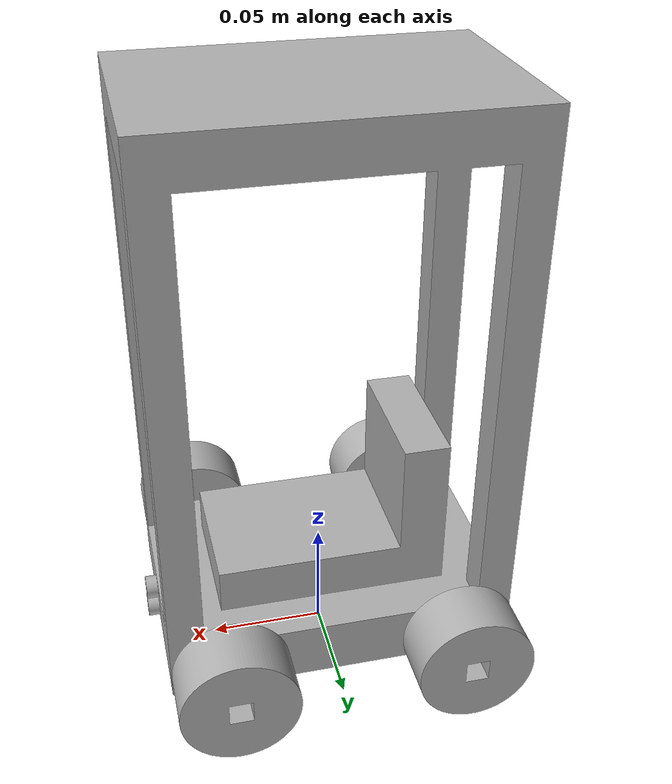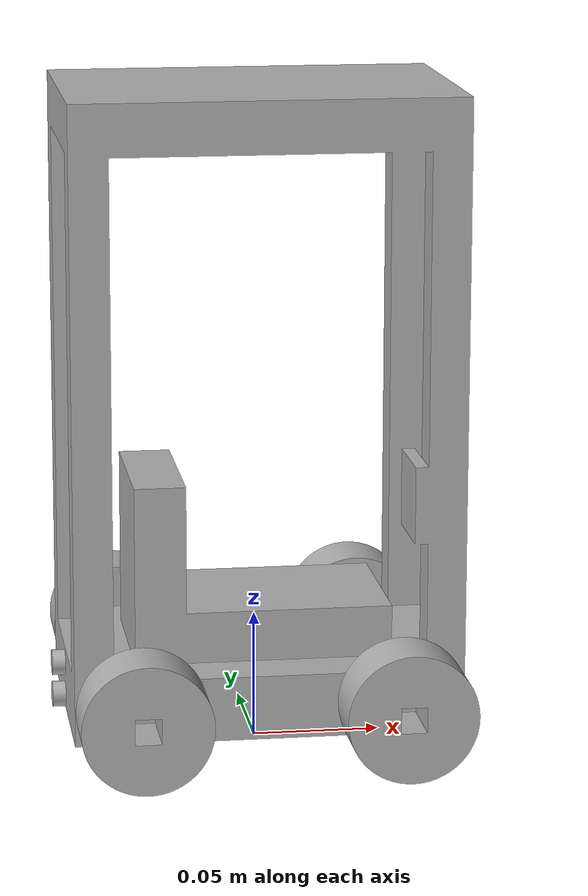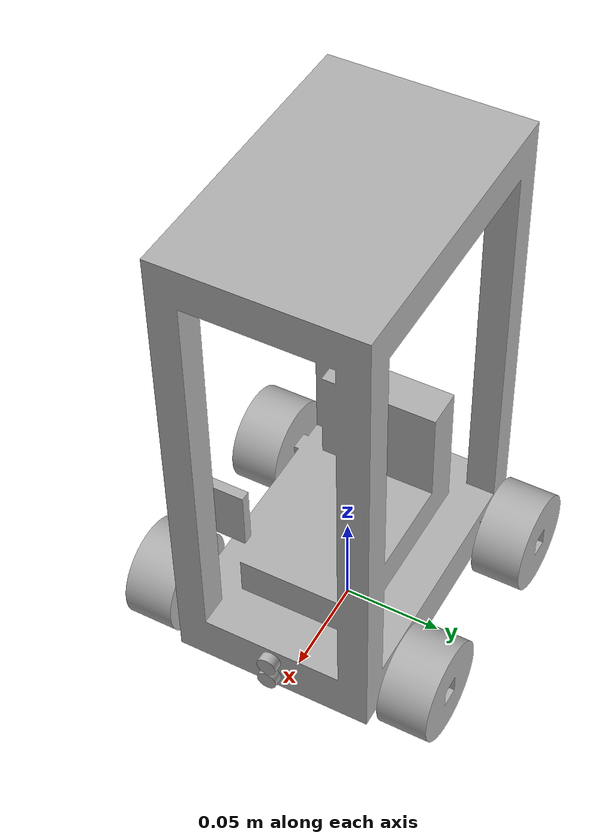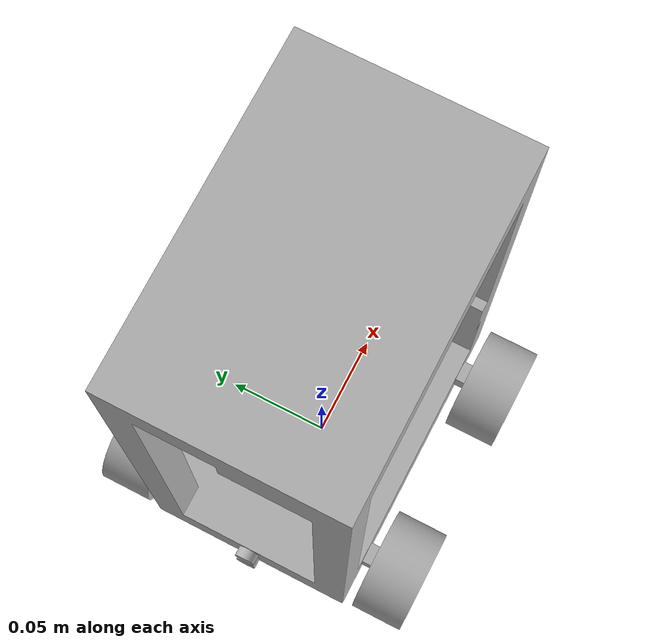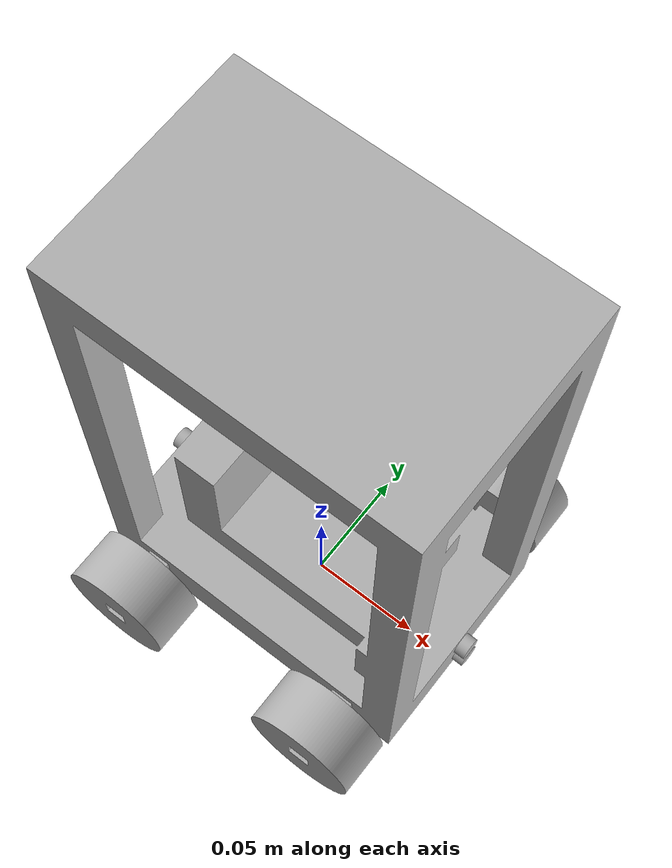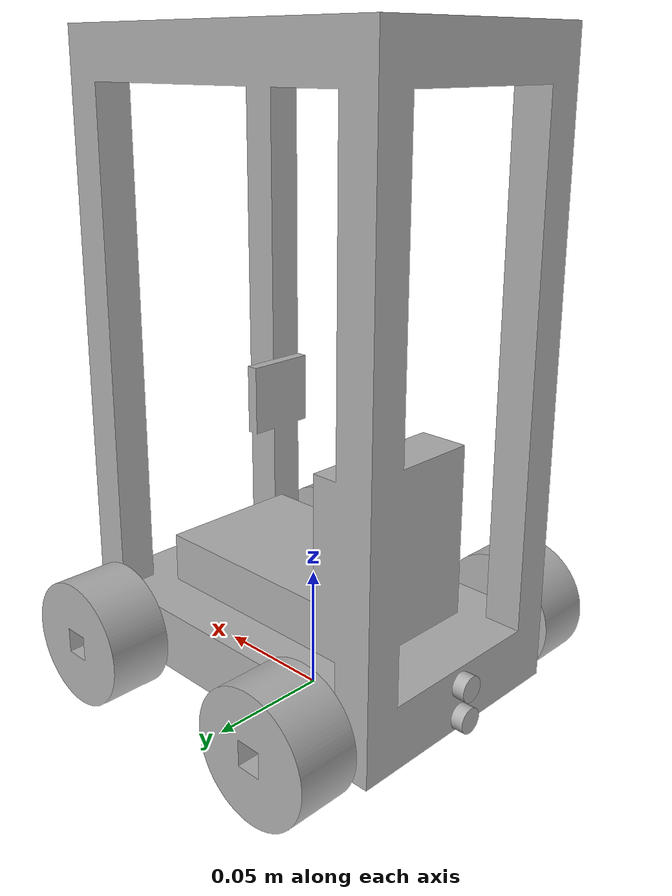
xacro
<?xml version="1.0" ?>
<robot name="myrobot_final" xmlns:xacro="http://www.ros.org/wiki/xacro">

<xacro:include filename="$(find myrobot_final_description)/urdf/materials.xacro" />
<xacro:include filename="$(find myrobot_final_description)/urdf/myrobot_final.trans" />
<xacro:include filename="$(find myrobot_final_description)/urdf/myrobot_final.gazebo" />
<link name="base_link">
  <inertial>
    <origin xyz="-0.0020559289486317654 -0.00015122419587132208 0.11727796447431584" rpy="0 0 0"/>
    <mass value="0.1978849999999998"/>
    <inertia ixx="0.002019" iyy="0.002274" izz="0.000619" ixy="2e-06" iyz="-0.0" ixz="-1.4e-05"/>
  </inertial>
  <visual>
    <origin xyz="0 0 0" rpy="0 0 0"/>
    <geometry>
      <mesh filename="package://myrobot_final_description/meshes/base_link.stl" scale="0.001 0.001 0.001"/>
    </geometry>
    <material name="silver"/>
  </visual>
  <collision>
    <origin xyz="0 0 0" rpy="0 0 0"/>
    <geometry>
      <mesh filename="package://myrobot_final_description/meshes/base_link.stl" scale="0.001 0.001 0.001"/>
    </geometry>
  </collision>
</link>

<link name="right_wheel2_1">
  <inertial>
    <origin xyz="0.0 -0.012500000000000004 6.938893903907228e-18" rpy="0 0 0"/>
    <mass value="0.365710973916873"/>
    <inertia ixx="7.9e-05" iyy="0.00012" izz="7.9e-05" ixy="0.0" iyz="-0.0" ixz="-0.0"/>
  </inertial>
  <visual>
    <origin xyz="0.05 0.055 -0.03" rpy="0 0 0"/>
    <geometry>
      <mesh filename="package://myrobot_final_description/meshes/right_wheel2_1.stl" scale="0.001 0.001 0.001"/>
    </geometry>
    <material name="silver"/>
  </visual>
  <collision>
    <origin xyz="0.05 0.055 -0.03" rpy="0 0 0"/>
    <geometry>
      <mesh filename="package://myrobot_final_description/meshes/right_wheel2_1.stl" scale="0.001 0.001 0.001"/>
    </geometry>
  </collision>
</link>

<link name="left_wheel2_1">
  <inertial>
    <origin xyz="1.3877787807814457e-17 0.01249999999999999 6.938893903907228e-18" rpy="0 0 0"/>
    <mass value="0.365710973916873"/>
    <inertia ixx="7.9e-05" iyy="0.00012" izz="7.9e-05" ixy="0.0" iyz="0.0" ixz="0.0"/>
  </inertial>
  <visual>
    <origin xyz="0.05 -0.055 -0.03" rpy="0 0 0"/>
    <geometry>
      <mesh filename="package://myrobot_final_description/meshes/left_wheel2_1.stl" scale="0.001 0.001 0.001"/>
    </geometry>
    <material name="silver"/>
  </visual>
  <collision>
    <origin xyz="0.05 -0.055 -0.03" rpy="0 0 0"/>
    <geometry>
      <mesh filename="package://myrobot_final_description/meshes/left_wheel2_1.stl" scale="0.001 0.001 0.001"/>
    </geometry>
  </collision>
</link>

<link name="right_wheel1_1">
  <inertial>
    <origin xyz="-1.3877787807814457e-17 -0.012500000000000004 6.938893903907228e-18" rpy="0 0 0"/>
    <mass value="0.365710973916873"/>
    <inertia ixx="7.9e-05" iyy="0.00012" izz="7.9e-05" ixy="0.0" iyz="-0.0" ixz="0.0"/>
  </inertial>
  <visual>
    <origin xyz="-0.05 0.055 -0.03" rpy="0 0 0"/>
    <geometry>
      <mesh filename="package://myrobot_final_description/meshes/right_wheel1_1.stl" scale="0.001 0.001 0.001"/>
    </geometry>
    <material name="silver"/>
  </visual>
  <collision>
    <origin xyz="-0.05 0.055 -0.03" rpy="0 0 0"/>
    <geometry>
      <mesh filename="package://myrobot_final_description/meshes/right_wheel1_1.stl" scale="0.001 0.001 0.001"/>
    </geometry>
  </collision>
</link>

<link name="left_wheel1_1">
  <inertial>
    <origin xyz="-1.3877787807814457e-17 0.01249999999999999 6.938893903907228e-18" rpy="0 0 0"/>
    <mass value="0.365710973916873"/>
    <inertia ixx="7.9e-05" iyy="0.00012" izz="7.9e-05" ixy="-0.0" iyz="0.0" ixz="0.0"/>
  </inertial>
  <visual>
    <origin xyz="-0.05 -0.055 -0.03" rpy="0 0 0"/>
    <geometry>
      <mesh filename="package://myrobot_final_description/meshes/left_wheel1_1.stl" scale="0.001 0.001 0.001"/>
    </geometry>
    <material name="silver"/>
  </visual>
  <collision>
    <origin xyz="-0.05 -0.055 -0.03" rpy="0 0 0"/>
    <geometry>
      <mesh filename="package://myrobot_final_description/meshes/left_wheel1_1.stl" scale="0.001 0.001 0.001"/>
    </geometry>
  </collision>
</link>

<link name="front_camera_1">
  <inertial>
    <origin xyz="0.0024999999999999883 2.0706853116018477e-05 -0.006999969373058072" rpy="0 0 0"/>
    <mass value="0.0008560839981032555"/>
    <inertia ixx="0.0" iyy="0.0" izz="0.0" ixy="0.0" iyz="-0.0" ixz="0.0"/>
  </inertial>
  <visual>
    <origin xyz="-0.075 -0.0 -0.04" rpy="0 0 0"/>
    <geometry>
      <mesh filename="package://myrobot_final_description/meshes/front_camera_1.stl" scale="0.001 0.001 0.001"/>
    </geometry>
    <material name="silver"/>
  </visual>
  <collision>
    <origin xyz="-0.075 -0.0 -0.04" rpy="0 0 0"/>
    <geometry>
      <mesh filename="package://myrobot_final_description/meshes/front_camera_1.stl" scale="0.001 0.001 0.001"/>
    </geometry>
  </collision>
</link>

<link name="front_lidar_1">
  <inertial>
    <origin xyz="0.0024999999999999883 5.228393686569684e-13 0.0075" rpy="0 0 0"/>
    <mass value="0.0008560839981032555"/>
    <inertia ixx="0.0" iyy="0.0" izz="0.0" ixy="0.0" iyz="0.0" ixz="-0.0"/>
  </inertial>
  <visual>
    <origin xyz="-0.075 -0.0 -0.015" rpy="0 0 0"/>
    <geometry>
      <mesh filename="package://myrobot_final_description/meshes/front_lidar_1.stl" scale="0.001 0.001 0.001"/>
    </geometry>
    <material name="silver"/>
  </visual>
  <collision>
    <origin xyz="-0.075 -0.0 -0.015" rpy="0 0 0"/>
    <geometry>
      <mesh filename="package://myrobot_final_description/meshes/front_lidar_1.stl" scale="0.001 0.001 0.001"/>
    </geometry>
  </collision>
</link>

<link name="bakc_camera_1">
  <inertial>
    <origin xyz="-0.0024999999999999883 -5.228386618670395e-13 -0.006999999999999999" rpy="0 0 0"/>
    <mass value="0.000856083998103255"/>
    <inertia ixx="0.0" iyy="0.0" izz="0.0" ixy="-0.0" iyz="0.0" ixz="0.0"/>
  </inertial>
  <visual>
    <origin xyz="0.075 -0.0 -0.04" rpy="0 0 0"/>
    <geometry>
      <mesh filename="package://myrobot_final_description/meshes/bakc_camera_1.stl" scale="0.001 0.001 0.001"/>
    </geometry>
    <material name="silver"/>
  </visual>
  <collision>
    <origin xyz="0.075 -0.0 -0.04" rpy="0 0 0"/>
    <geometry>
      <mesh filename="package://myrobot_final_description/meshes/bakc_camera_1.stl" scale="0.001 0.001 0.001"/>
    </geometry>
  </collision>
</link>

<link name="back_lidar_1">
  <inertial>
    <origin xyz="-0.0024999999999999883 -5.228400754468978e-13 0.005000000000000001" rpy="0 0 0"/>
    <mass value="0.0008560839981032552"/>
    <inertia ixx="0.0" iyy="0.0" izz="0.0" ixy="0.0" iyz="0.0" ixz="0.0"/>
  </inertial>
  <visual>
    <origin xyz="0.075 -0.0 -0.015" rpy="0 0 0"/>
    <geometry>
      <mesh filename="package://myrobot_final_description/meshes/back_lidar_1.stl" scale="0.001 0.001 0.001"/>
    </geometry>
    <material name="silver"/>
  </visual>
  <collision>
    <origin xyz="0.075 -0.0 -0.015" rpy="0 0 0"/>
    <geometry>
      <mesh filename="package://myrobot_final_description/meshes/back_lidar_1.stl" scale="0.001 0.001 0.001"/>
    </geometry>
  </collision>
</link>

<joint name="Revolute 12" type="continuous">
  <origin xyz="-0.05 -0.055 0.03" rpy="0 0 0"/>
  <parent link="base_link"/>
  <child link="right_wheel2_1"/>
  <axis xyz="0.0 1.0 0.0"/>
</joint>

<joint name="Revolute 13" type="continuous">
  <origin xyz="-0.05 0.055 0.03" rpy="0 0 0"/>
  <parent link="base_link"/>
  <child link="left_wheel2_1"/>
  <axis xyz="0.0 1.0 0.0"/>
</joint>

<joint name="Revolute 14" type="continuous">
  <origin xyz="0.05 -0.055 0.03" rpy="0 0 0"/>
  <parent link="base_link"/>
  <child link="right_wheel1_1"/>
  <axis xyz="0.0 1.0 0.0"/>
</joint>

<joint name="Revolute 15" type="continuous">
  <origin xyz="0.05 0.055 0.03" rpy="0 0 0"/>
  <parent link="base_link"/>
  <child link="left_wheel1_1"/>
  <axis xyz="0.0 1.0 0.0"/>
</joint>

<joint name="Rigid 16" type="fixed">
  <origin xyz="0.075 0.0 0.04" rpy="0 0 0"/>
  <parent link="base_link"/>
  <child link="front_camera_1"/>
</joint>

<joint name="Rigid 17" type="fixed">
  <origin xyz="0.075 0.0 0.015" rpy="0 0 0"/>
  <parent link="base_link"/>
  <child link="front_lidar_1"/>
</joint>

<joint name="Rigid 18" type="fixed">
  <origin xyz="-0.075 0.0 0.04" rpy="0 0 0"/>
  <parent link="base_link"/>
  <child link="bakc_camera_1"/>
</joint>

<joint name="Rigid 19" type="fixed">
  <origin xyz="-0.075 0.0 0.015" rpy="0 0 0"/>
  <parent link="base_link"/>
  <child link="back_lidar_1"/>
</joint>

</robot>

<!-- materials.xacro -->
<robot name="myrobot_final" xmlns:xacro="http://www.ros.org/wiki/xacro" >

<material name="silver">
  <color rgba="0.700 0.700 0.700 1.000"/>
</material>

</robot>

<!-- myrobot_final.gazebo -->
<robot name="myrobot_final" xmlns:xacro="http://www.ros.org/wiki/xacro" >

<xacro:property name="body_color" value="Gazebo/Silver" />

<gazebo>
  <plugin name="control" filename="libgazebo_ros_control.so"/>
</gazebo>
<gazebo reference="base_link">
  <material>${body_color}</material>
  <mu1>0.2</mu1>
  <mu2>0.2</mu2>
  <selfCollide>true</selfCollide>
  <gravity>true</gravity>
</gazebo>

<gazebo reference="right_wheel2_1">
  <material>${body_color}</material>
  <mu1>0.2</mu1>
  <mu2>0.2</mu2>
  <selfCollide>true</selfCollide>
</gazebo>

<gazebo reference="left_wheel2_1">
  <material>${body_color}</material>
  <mu1>0.2</mu1>
  <mu2>0.2</mu2>
  <selfCollide>true</selfCollide>
</gazebo>

<gazebo reference="right_wheel1_1">
  <material>${body_color}</material>
  <mu1>0.2</mu1>
  <mu2>0.2</mu2>
  <selfCollide>true</selfCollide>
</gazebo>

<gazebo reference="left_wheel1_1">
  <material>${body_color}</material>
  <mu1>0.2</mu1>
  <mu2>0.2</mu2>
  <selfCollide>true</selfCollide>
</gazebo>

<gazebo reference="front_camera_1">
  <material>${body_color}</material>
  <mu1>0.2</mu1>
  <mu2>0.2</mu2>
  <selfCollide>true</selfCollide>
</gazebo>

<gazebo reference="front_lidar_1">
  <material>${body_color}</material>
  <mu1>0.2</mu1>
  <mu2>0.2</mu2>
  <selfCollide>true</selfCollide>
</gazebo>

<gazebo reference="bakc_camera_1">
  <material>${body_color}</material>
  <mu1>0.2</mu1>
  <mu2>0.2</mu2>
  <selfCollide>true</selfCollide>
</gazebo>

<gazebo reference="back_lidar_1">
  <material>${body_color}</material>
  <mu1>0.2</mu1>
  <mu2>0.2</mu2>
  <selfCollide>true</selfCollide>
</gazebo>

<gazebo>
  <plugin name="skid_steer_drive_controller" filename="libgazebo_ros_skid_steer_drive.so">
    <updateRate>100.0</updateRate>
    <robotNamespace>/</robotNamespace>
    <leftFrontJoint>Revolute 15</leftFrontJoint>
    <rightFrontJoint>Revolute 14</rightFrontJoint>
    <leftRearJoint>Revolute 13</leftRearJoint>
    <rightRearJoint>Revolute 12</rightRearJoint>
    <wheelSeparation>0.11</wheelSeparation>
    <wheelDiameter>0.05</wheelDiameter>
    <robotBaseFrame>base_link</robotBaseFrame>
    <torque>20</torque>
    <topicName>cmd_vel</topicName>
    <broadcastTF>false</broadcastTF>
  </plugin>

</gazebo>

 <!-- hokuyo front-->
  <gazebo reference="front_lidar_1">
    <sensor type="ray" name="front_hokuyo_sensor">
      <pose>0 0 0 0 0 0</pose>
      <visualize>true</visualize>
      <update_rate>40</update_rate>
      <ray>
        <scan>
          <horizontal>
            <samples>720</samples>
            <resolution>1</resolution>
            <min_angle>-1.570796</min_angle>
            <max_angle>1.570796</max_angle>
          </horizontal>
        </scan>
        <range>
          <min>0.10</min>
          <max>30.0</max>
          <resolution>0.01</resolution>
        </range>
        <noise>
          <type>gaussian</type>
          <mean>0.0</mean>
          <stddev>0.01</stddev>
        </noise>
      </ray>
      <plugin name="front_hokuyo_sensor" filename="libgazebo_ros_laser.so">
        <topicName>/rrbot/laser/scan</topicName>
        <frameName>front_lidar_1</frameName>
      </plugin>
    </sensor>
  </gazebo>
 <!-- hokuyo back-->
  <gazebo reference="back_lidar_1">
    <sensor type="ray" name="rear_hokuyo_sensor">
      <pose>0 0 0.1 0 0 3.14159</pose>
      <visualize>false</visualize>
      <update_rate>40</update_rate>
      <ray>
        <scan>
          <horizontal>
            <samples>720</samples>
            <resolution>1</resolution>
            <min_angle>-1.570796</min_angle>
            <max_angle>1.570796</max_angle>
          </horizontal>
        </scan>
        <range>
          <min>0.05</min>
          <max>1.0</max>
          <resolution>0.01</resolution>
        </range>
        <noise>
          <type>gaussian</type>
          <mean>0.0</mean>
          <stddev>0.01</stddev>
        </noise>
      </ray>
      <plugin name="rear_hokuyo_sensor" filename="libgazebo_ros_laser.so">
        <topicName>/rear_scan</topicName>
        <frameName>back_lidar_1</frameName>
      </plugin>
    </sensor>
  </gazebo>

<!-- camera front-->
  <gazebo reference="front_camera_1">
    <sensor type="camera" name="camera1">
      <update_rate>30.0</update_rate>
      <camera name="head">
        <horizontal_fov>1.3962634</horizontal_fov>
        <image>
          <width>800</width>
          <height>800</height>
          <format>R8G8B8</format>
        </image>
        <clip>
          <near>0.02</near>
          <far>300</far>
        </clip>
        <noise>
          <type>gaussian</type>
          <!-- Noise is sampled independently per pixel on each frame.
               That pixel's noise value is added to each of its color
               channels, which at that point lie in the range [0,1]. -->
          <mean>0.0</mean>
          <stddev>0.007</stddev>
        </noise>
      </camera>
      <plugin name="camera_controller" filename="libgazebo_ros_camera.so">
        <alwaysOn>true</alwaysOn>
        <updateRate>0.0</updateRate>
        <cameraName>camera1</cameraName>
        <imageTopicName>front_image_raw</imageTopicName>
        <cameraInfoTopicName>front_camera_info</cameraInfoTopicName>
        <frameName>front_camera_1</frameName>
        <hackBaseline>0.07</hackBaseline>
        <distortionK1>0.0</distortionK1>
        <distortionK2>0.0</distortionK2>
        <distortionK3>0.0</distortionK3>
        <distortionT1>0.0</distortionT1>
        <distortionT2>0.0</distortionT2>
      </plugin>
    </sensor>
  </gazebo>
<!-- camera back-->
  <gazebo reference="bakc_camera_1">
    <sensor type="camera" name="camera1">
      <pose>0 0 0 0 0 3.1416</pose>  <!--向後看-->
      <update_rate>30.0</update_rate>
      <camera name="head">
        <horizontal_fov>1.3962634</horizontal_fov>
        <image>
          <width>800</width>
          <height>800</height>
          <format>R8G8B8</format>
        </image>
        <clip>
          <near>0.02</near>
          <far>300</far>
        </clip>
        <noise>
          <type>gaussian</type>
          <!-- Noise is sampled independently per pixel on each frame.
               That pixel's noise value is added to each of its color
               channels, which at that point lie in the range [0,1]. -->
          <mean>0.0</mean>
          <stddev>0.007</stddev>
        </noise>
      </camera>
      <plugin name="camera_controller" filename="libgazebo_ros_camera.so">
        <alwaysOn>true</alwaysOn>
        <updateRate>0.0</updateRate>
        <cameraName>camera1</cameraName>
        <imageTopicName>rear_image_raw</imageTopicName>
        <cameraInfoTopicName>rear_camera_info</cameraInfoTopicName>
        <frameName>bakc_camera_1</frameName>
        <hackBaseline>0.07</hackBaseline>
        <distortionK1>0.0</distortionK1>
        <distortionK2>0.0</distortionK2>
        <distortionK3>0.0</distortionK3>
        <distortionT1>0.0</distortionT1>
        <distortionT2>0.0</distortionT2>
      </plugin>
    </sensor>
  </gazebo>

</robot>
